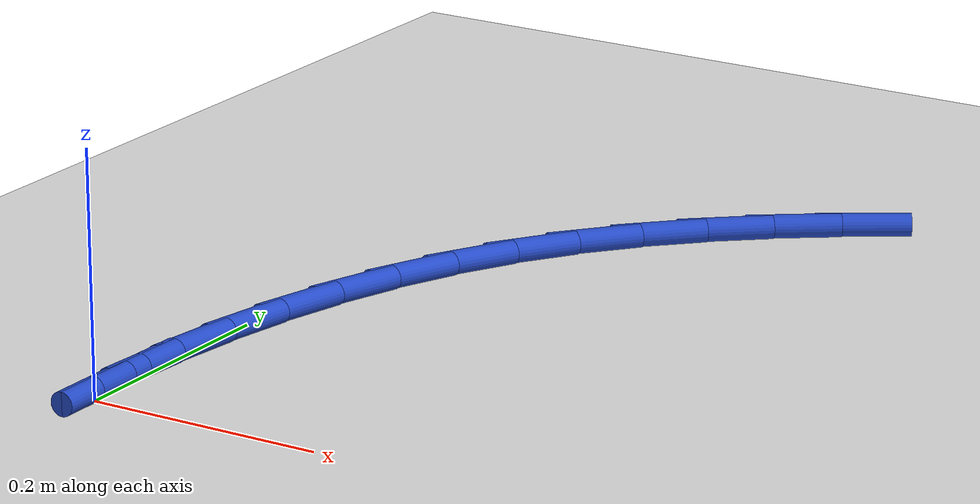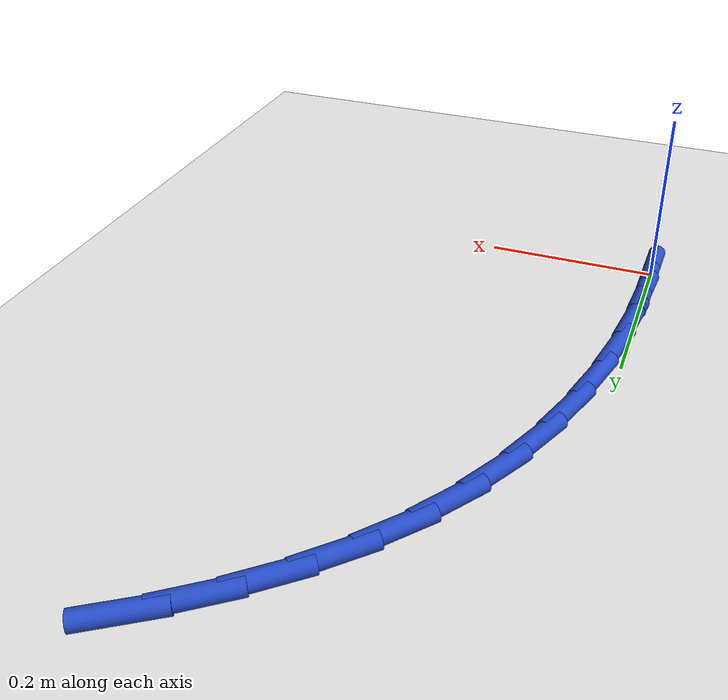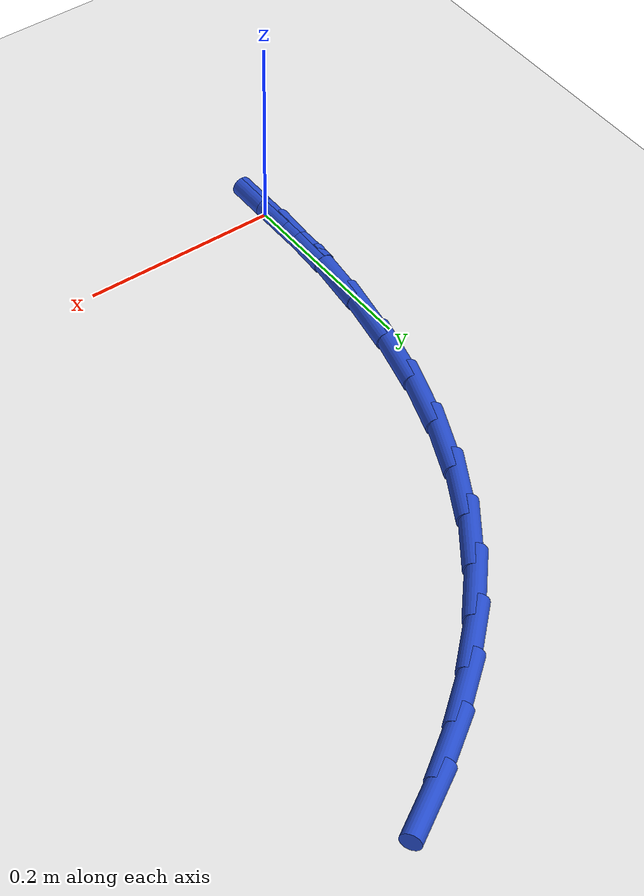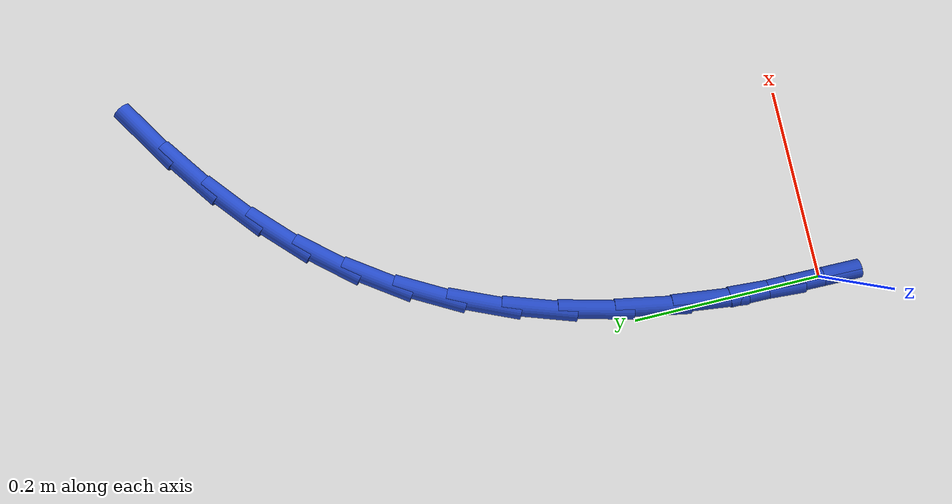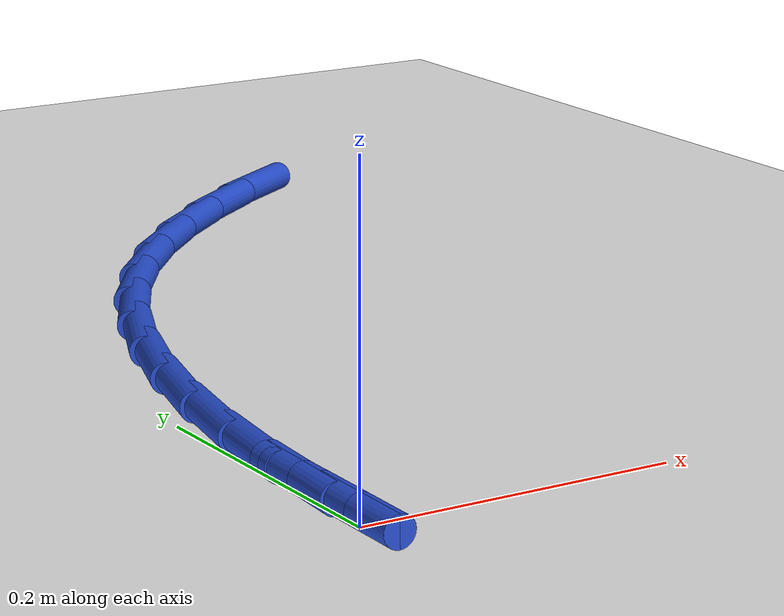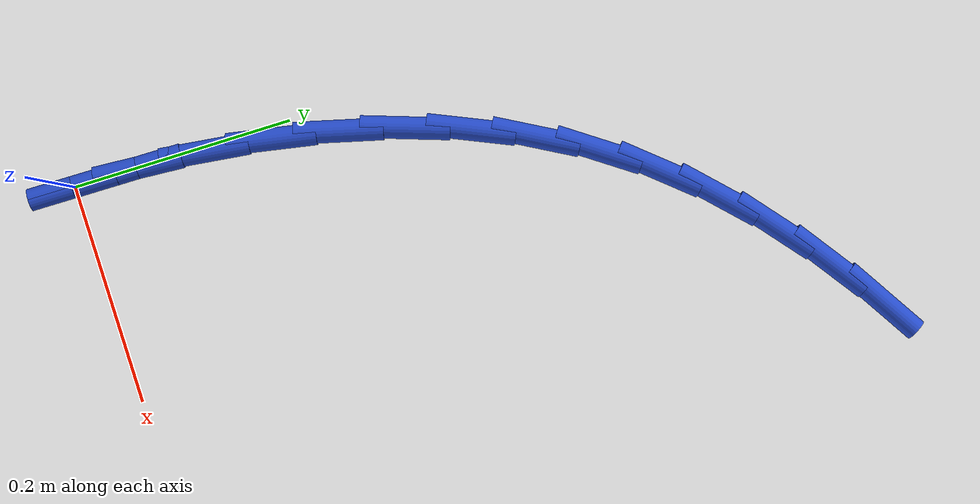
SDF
<sdf version="1.6">
 <world name="default">
  <model name="ground_plane">
   <static>1</static>
   <link name="link">
    <collision name="collision">
     <geometry><plane><normal>0 0 1</normal><size>100 100</size></plane></geometry>
     <surface><friction><ode><mu>100</mu><mu2>50</mu2></ode></friction></surface>
    </collision>
    <visual name="visual">
     <cast_shadows>0</cast_shadows>
     <geometry><plane><normal>0 0 1</normal><size>100 100</size></plane></geometry>
     <material>
      <script><uri>file://media/materials/scripts/gazebo.material</uri><name>Gazebo/WhiteGlow</name></script>
     </material>
    </visual>
   </link>
  </model>
  <model name="line">
   <link name="link_0">
    <pose>-3.122502256758253e-17 1.5265566588595902e-16 0.01 0 1.57 1.559044433654499</pose>
    <collision name="collision">
     <geometry><cylinder><radius>0.01</radius><length>0.08</length></cylinder></geometry>
    </collision>
    <visual name="visual">
     <material>
      <script><name>Gazebo/Blue</name><uri>file://media/materials/scripts/gazebo.material</uri></script>
     </material>
     <geometry><cylinder><radius>0.01</radius><length>0.08</length></cylinder></geometry>
    </visual>
   </link>
   <link name="link_1">
    <pose>0.0007081392954125334 0.060254691477368665 0.01 0 1.57 1.506323973408718</pose>
    <collision name="collision">
     <geometry><cylinder><radius>0.01</radius><length>0.08</length></cylinder></geometry>
    </collision>
    <visual name="visual">
     <material>
      <script><name>Gazebo/Blue</name><uri>file://media/materials/scripts/gazebo.material</uri></script>
     </material>
     <geometry><cylinder><radius>0.01</radius><length>0.08</length></cylinder></geometry>
    </visual>
   </link>
   <link name="link_2">
    <pose>0.004595787409178726 0.12047058001296483 0.01 0 1.57 1.4492059824607948</pose>
    <collision name="collision">
     <geometry><cylinder><radius>0.01</radius><length>0.08</length></cylinder></geometry>
    </collision>
    <visual name="visual">
     <material>
      <script><name>Gazebo/Blue</name><uri>file://media/materials/scripts/gazebo.material</uri></script>
     </material>
     <geometry><cylinder><radius>0.01</radius><length>0.08</length></cylinder></geometry>
    </visual>
   </link>
   <link name="link_3">
    <pose>0.011889222203427783 0.1801583520714836 0.01 0 1.57 1.3866867027830088</pose>
    <collision name="collision">
     <geometry><cylinder><radius>0.01</radius><length>0.08</length></cylinder></geometry>
    </collision>
    <visual name="visual">
     <material>
      <script><name>Gazebo/Blue</name><uri>file://media/materials/scripts/gazebo.material</uri></script>
     </material>
     <geometry><cylinder><radius>0.01</radius><length>0.08</length></cylinder></geometry>
    </visual>
   </link>
   <link name="link_4">
    <pose>0.022814721540288917 0.23882869411761987 0.01 0 1.57 1.3177181745114555</pose>
    <collision name="collision">
     <geometry><cylinder><radius>0.01</radius><length>0.08</length></cylinder></geometry>
    </collision>
    <visual name="visual">
     <material>
      <script><name>Gazebo/Blue</name><uri>file://media/materials/scripts/gazebo.material</uri></script>
     </material>
     <geometry><cylinder><radius>0.01</radius><length>0.08</length></cylinder></geometry>
    </visual>
   </link>
   <link name="link_5">
    <pose>0.037598563281891345 0.2959922926160686 0.01 0 1.57 1.2412472857110184</pose>
    <collision name="collision">
     <geometry><cylinder><radius>0.01</radius><length>0.08</length></cylinder></geometry>
    </collision>
    <visual name="visual">
     <material>
      <script><name>Gazebo/Blue</name><uri>file://media/materials/scripts/gazebo.material</uri></script>
     </material>
     <geometry><cylinder><radius>0.01</radius><length>0.08</length></cylinder></geometry>
    </visual>
   </link>
   <link name="link_6">
    <pose>0.05646702529036428 0.3511598340315245 0.01 0 1.57 1.1563020953320151</pose>
    <collision name="collision">
     <geometry><cylinder><radius>0.01</radius><length>0.08</length></cylinder></geometry>
    </collision>
    <visual name="visual">
     <material>
      <script><name>Gazebo/Blue</name><uri>file://media/materials/scripts/gazebo.material</uri></script>
     </material>
     <geometry><cylinder><radius>0.01</radius><length>0.08</length></cylinder></geometry>
    </visual>
   </link>
   <link name="link_7">
    <pose>0.07964638542783697 0.40384200482868293 0.01 0 1.57 1.0621424147557283</pose>
    <collision name="collision">
     <geometry><cylinder><radius>0.01</radius><length>0.08</length></cylinder></geometry>
    </collision>
    <visual name="visual">
     <material>
      <script><name>Gazebo/Blue</name><uri>file://media/materials/scripts/gazebo.material</uri></script>
     </material>
     <geometry><cylinder><radius>0.01</radius><length>0.08</length></cylinder></geometry>
    </visual>
   </link>
   <link name="link_8">
    <pose>0.10736292155643862 0.45354949147223855 0.01 0 1.57 0.9597468875499837</pose>
    <collision name="collision">
     <geometry><cylinder><radius>0.01</radius><length>0.08</length></cylinder></geometry>
    </collision>
    <visual name="visual">
     <material>
      <script><name>Gazebo/Blue</name><uri>file://media/materials/scripts/gazebo.material</uri></script>
     </material>
     <geometry><cylinder><radius>0.01</radius><length>0.08</length></cylinder></geometry>
    </visual>
   </link>
   <link name="link_9">
    <pose>0.1397924652149401 0.4998455271220995 0.01 0 1.57 0.8602235043781978</pose>
    <collision name="collision">
     <geometry><cylinder><radius>0.01</radius><length>0.08</length></cylinder></geometry>
    </collision>
    <visual name="visual">
     <material>
      <script><name>Gazebo/Blue</name><uri>file://media/materials/scripts/gazebo.material</uri></script>
     </material>
     <geometry><cylinder><radius>0.01</radius><length>0.08</length></cylinder></geometry>
    </visual>
   </link>
   <link name="link_10">
    <pose>0.17669374912350808 0.5427278099900532 0.01 0 1.57 0.7699493172744458</pose>
    <collision name="collision">
     <geometry><cylinder><radius>0.01</radius><length>0.08</length></cylinder></geometry>
    </collision>
    <visual name="visual">
     <material>
      <script><name>Gazebo/Blue</name><uri>file://media/materials/scripts/gazebo.material</uri></script>
     </material>
     <geometry><cylinder><radius>0.01</radius><length>0.08</length></cylinder></geometry>
    </visual>
   </link>
   <link name="link_11">
    <pose>0.2176197145156794 0.5824083980629022 0.01 0 1.57 0.6895084786955574</pose>
    <collision name="collision">
     <geometry><cylinder><radius>0.01</radius><length>0.08</length></cylinder></geometry>
    </collision>
    <visual name="visual">
     <material>
      <script><name>Gazebo/Blue</name><uri>file://media/materials/scripts/gazebo.material</uri></script>
     </material>
     <geometry><cylinder><radius>0.01</radius><length>0.08</length></cylinder></geometry>
    </visual>
   </link>
   <link name="link_12">
    <pose>0.2621218521355305 0.6191008602091642 0.01 0 1.57 0.618810779159029</pose>
    <collision name="collision">
     <geometry><cylinder><radius>0.01</radius><length>0.08</length></cylinder></geometry>
    </collision>
    <visual name="visual">
     <material>
      <script><name>Gazebo/Blue</name><uri>file://media/materials/scripts/gazebo.material</uri></script>
     </material>
     <geometry><cylinder><radius>0.01</radius><length>0.08</length></cylinder></geometry>
    </visual>
   </link>
   <link name="link_13">
    <pose>0.30975165272713806 0.6530187652973574 0.01 0 1.57 0.5573665422863354</pose>
    <collision name="collision">
     <geometry><cylinder><radius>0.01</radius><length>0.08</length></cylinder></geometry>
    </collision>
    <visual name="visual">
     <material>
      <script><name>Gazebo/Blue</name><uri>file://media/materials/scripts/gazebo.material</uri></script>
     </material>
     <geometry><cylinder><radius>0.01</radius><length>0.08</length></cylinder></geometry>
    </visual>
   </link>
   <link name="link_130">
    <pose>-1.0408340855860843e-17 -5.551115123125783e-17 0.01 0 1.57 1.5599113525931985</pose>
    <collision name="collision">
     <geometry><cylinder><radius>0.01</radius><length>0.08</length></cylinder></geometry>
    </collision>
    <visual name="visual">
     <material>
      <script><name>Gazebo/Blue</name><uri>file://media/materials/scripts/gazebo.material</uri></script>
     </material>
     <geometry><cylinder><radius>0.01</radius><length>0.08</length></cylinder></geometry>
    </visual>
   </link>
   <link name="link_131">
    <pose>0.0006564922075886076 0.06030940152646232 0.01 0 1.57 1.559911352593198</pose>
    <collision name="collision">
     <geometry><cylinder><radius>0.01</radius><length>0.08</length></cylinder></geometry>
    </collision>
    <visual name="visual">
     <material>
      <script><name>Gazebo/Blue</name><uri>file://media/materials/scripts/gazebo.material</uri></script>
     </material>
     <geometry><cylinder><radius>0.01</radius><length>0.08</length></cylinder></geometry>
    </visual>
   </link>
  </model>
 </world>
</sdf>
